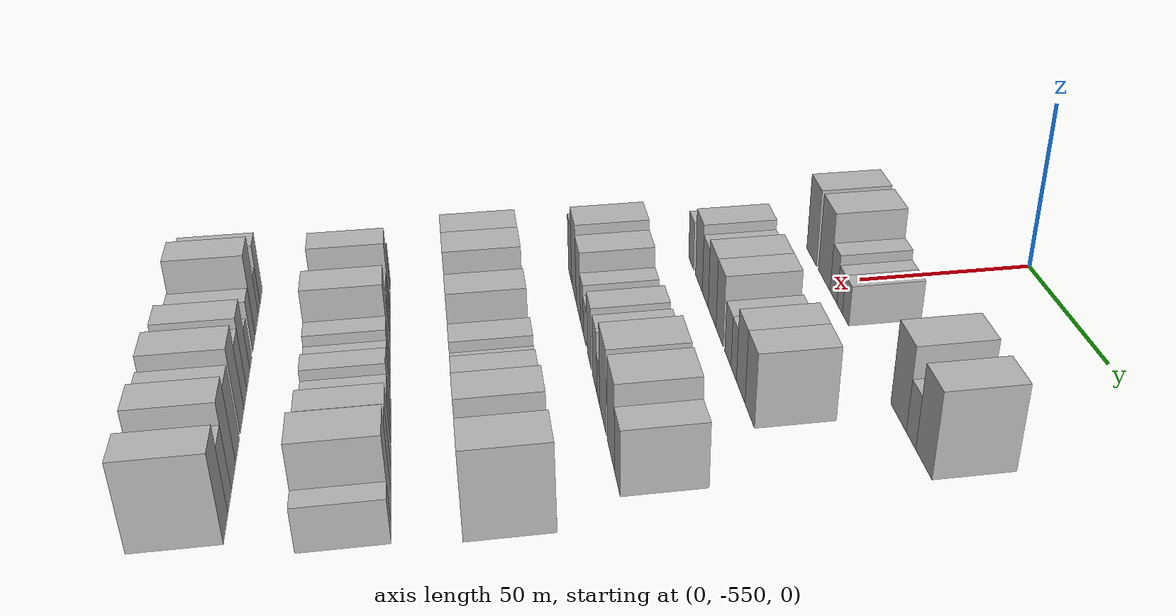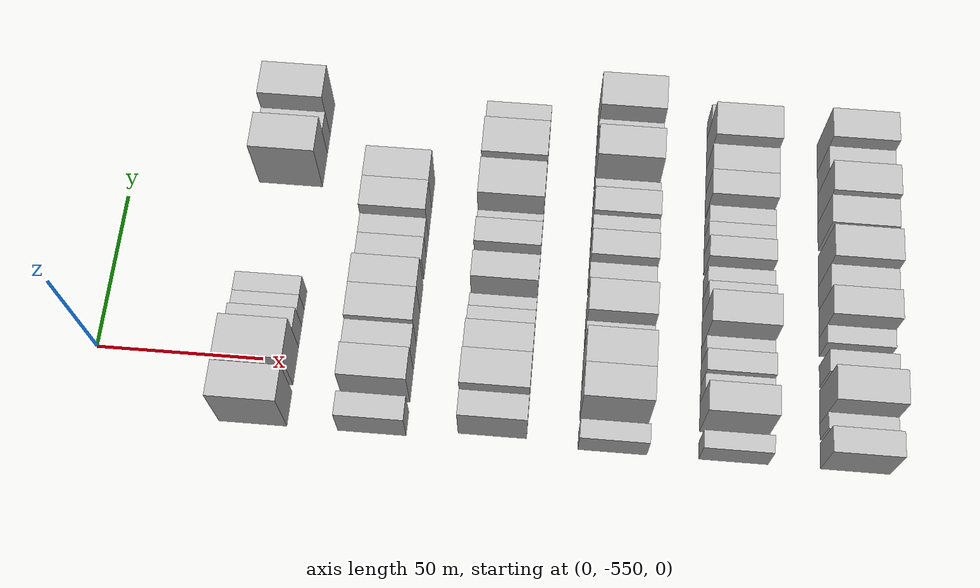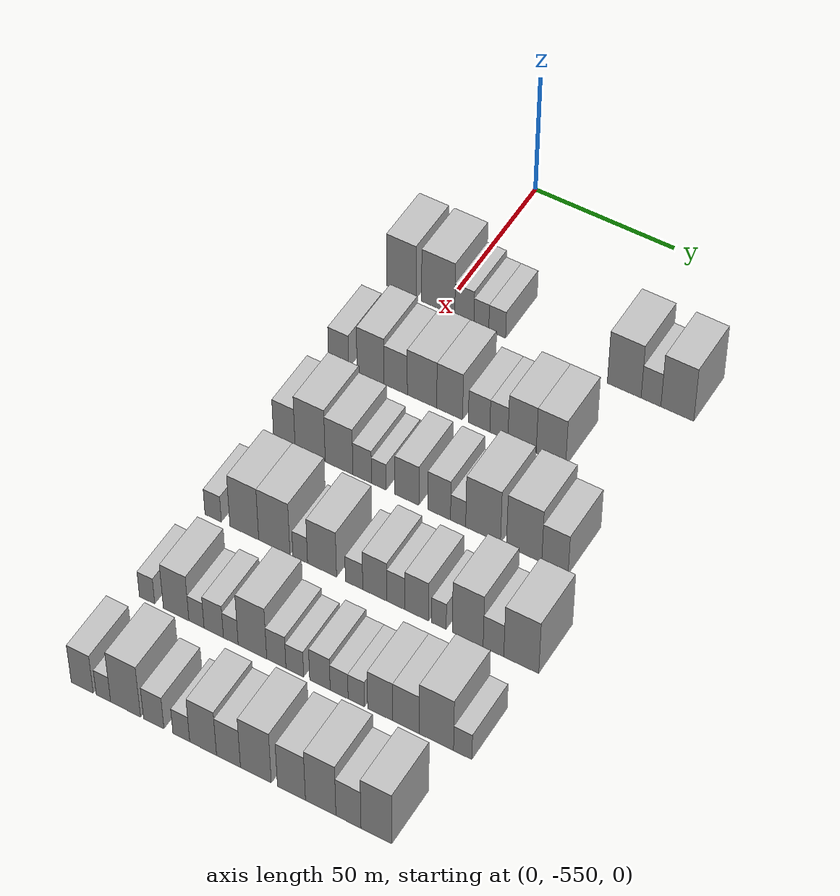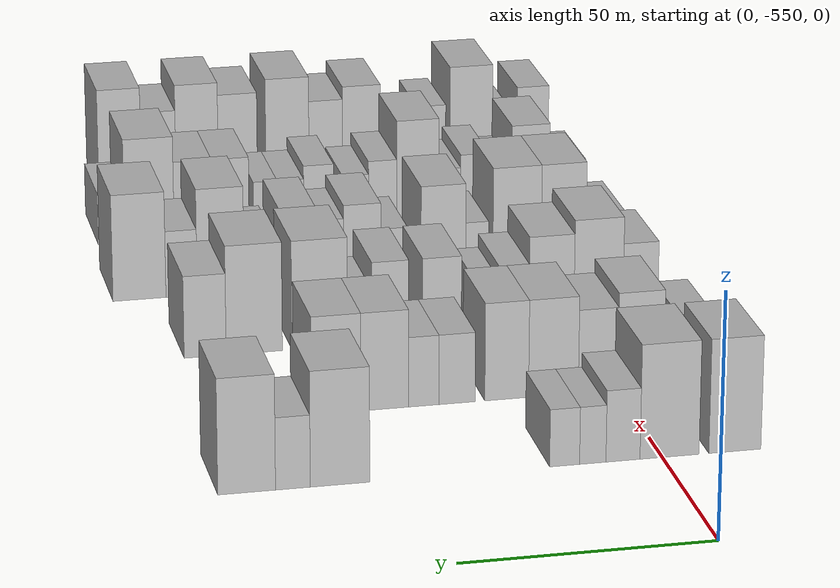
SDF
<sdf version="1.6">
 <world name="default">
  <model name="building_1">
   <static>1</static>
   <pose>50.0000 -564.7196 0 0.000000 0.000000 0.000000</pose>
   <link name="link">
    <pose>0 0 12.00 0 0 0</pose>
    <collision name="collision"><geometry><box><size>20.0000 10.5607 24.0000</size></box></geometry></collision>
    <visual name="visual">
     <cast_shadows>0</cast_shadows>
     <geometry><box><size>20.0000 10.5607 24.0000</size></box></geometry>
     <material>
      <script>
       <uri>model://HANNAS_wall/materials/scripts</uri>
       <uri>model://HANNAS_wall/materials/textures</uri>
       <name>vrc/HANNAS_wall</name>
      </script>
     </material>
    </visual>
   </link>
  </model>
  <model name="building_2">
   <static>1</static>
   <pose>50.0000 -551.4736 0 0.000000 0.000000 0.000000</pose>
   <link name="link">
    <pose>0 0 12.00 0 0 0</pose>
    <collision name="collision"><geometry><box><size>20.0000 11.9315 24.0000</size></box></geometry></collision>
    <visual name="visual">
     <cast_shadows>0</cast_shadows>
     <geometry><box><size>20.0000 11.9315 24.0000</size></box></geometry>
     <material>
      <script>
       <uri>model://HANNAS_wall/materials/scripts</uri>
       <uri>model://HANNAS_wall/materials/textures</uri>
       <name>vrc/HANNAS_wall</name>
      </script>
     </material>
    </visual>
   </link>
  </model>
  <model name="building_3">
   <static>1</static>
   <pose>50.0000 -542.0837 0 0.000000 0.000000 0.000000</pose>
   <link name="link">
    <pose>0 0 7.50 0 0 0</pose>
    <collision name="collision"><geometry><box><size>20.0000 6.8483 15.0000</size></box></geometry></collision>
    <visual name="visual">
     <cast_shadows>0</cast_shadows>
     <geometry><box><size>20.0000 6.8483 15.0000</size></box></geometry>
     <material>
      <script>
       <uri>model://HANNAS_wall/materials/scripts</uri>
       <uri>model://HANNAS_wall/materials/textures</uri>
       <name>vrc/HANNAS_wall</name>
      </script>
     </material>
    </visual>
   </link>
  </model>
  <model name="building_4">
   <static>1</static>
   <pose>50.0000 -536.0153 0 0.000000 0.000000 0.000000</pose>
   <link name="link">
    <pose>0 0 6.00 0 0 0</pose>
    <collision name="collision"><geometry><box><size>20.0000 5.2885 12.0000</size></box></geometry></collision>
    <visual name="visual">
     <cast_shadows>0</cast_shadows>
     <geometry><box><size>20.0000 5.2885 12.0000</size></box></geometry>
     <material>
      <script>
       <uri>model://HANNAS_wall/materials/scripts</uri>
       <uri>model://HANNAS_wall/materials/textures</uri>
       <name>vrc/HANNAS_wall</name>
      </script>
     </material>
    </visual>
   </link>
  </model>
  <model name="building_5">
   <static>1</static>
   <pose>50.0000 -530.3753 0 0.000000 0.000000 0.000000</pose>
   <link name="link">
    <pose>0 0 6.00 0 0 0</pose>
    <collision name="collision"><geometry><box><size>20.0000 5.9915 12.0000</size></box></geometry></collision>
    <visual name="visual">
     <cast_shadows>0</cast_shadows>
     <geometry><box><size>20.0000 5.9915 12.0000</size></box></geometry>
     <material>
      <script>
       <uri>model://HANNAS_wall/materials/scripts</uri>
       <uri>model://HANNAS_wall/materials/textures</uri>
       <name>vrc/HANNAS_wall</name>
      </script>
     </material>
    </visual>
   </link>
  </model>
  <model name="building_6">
   <static>1</static>
   <pose>50.0000 -485.9031 0 0.000000 0.000000 0.000000</pose>
   <link name="link">
    <pose>0 0 12.00 0 0 0</pose>
    <collision name="collision"><geometry><box><size>20.0000 11.6509 24.0000</size></box></geometry></collision>
    <visual name="visual">
     <cast_shadows>0</cast_shadows>
     <geometry><box><size>20.0000 11.6509 24.0000</size></box></geometry>
     <material>
      <script>
       <uri>model://HANNAS_wall/materials/scripts</uri>
       <uri>model://HANNAS_wall/materials/textures</uri>
       <name>vrc/HANNAS_wall</name>
      </script>
     </material>
    </visual>
   </link>
  </model>
  <model name="building_7">
   <static>1</static>
   <pose>50.0000 -476.6846 0 0.000000 0.000000 0.000000</pose>
   <link name="link">
    <pose>0 0 7.50 0 0 0</pose>
    <collision name="collision"><geometry><box><size>20.0000 6.7861 15.0000</size></box></geometry></collision>
    <visual name="visual">
     <cast_shadows>0</cast_shadows>
     <geometry><box><size>20.0000 6.7861 15.0000</size></box></geometry>
     <material>
      <script>
       <uri>model://HANNAS_wall/materials/scripts</uri>
       <uri>model://HANNAS_wall/materials/textures</uri>
       <name>vrc/HANNAS_wall</name>
      </script>
     </material>
    </visual>
   </link>
  </model>
  <model name="building_8">
   <static>1</static>
   <pose>50.0000 -467.6804 0 0.000000 0.000000 0.000000</pose>
   <link name="link">
    <pose>0 0 12.00 0 0 0</pose>
    <collision name="collision"><geometry><box><size>20.0000 11.2222 24.0000</size></box></geometry></collision>
    <visual name="visual">
     <cast_shadows>0</cast_shadows>
     <geometry><box><size>20.0000 11.2222 24.0000</size></box></geometry>
     <material>
      <script>
       <uri>model://HANNAS_wall/materials/scripts</uri>
       <uri>model://HANNAS_wall/materials/textures</uri>
       <name>vrc/HANNAS_wall</name>
      </script>
     </material>
    </visual>
   </link>
  </model>
  <model name="building_119">
   <static>1</static>
   <pose>85.0000 -566.3953 0 0.000000 0.000000 0.000000</pose>
   <link name="link">
    <pose>0 0 7.50 0 0 0</pose>
    <collision name="collision"><geometry><box><size>20.0000 7.2094 15.0000</size></box></geometry></collision>
    <visual name="visual">
     <cast_shadows>0</cast_shadows>
     <geometry><box><size>20.0000 7.2094 15.0000</size></box></geometry>
     <material>
      <script>
       <uri>model://HANNAS_wall/materials/scripts</uri>
       <uri>model://HANNAS_wall/materials/textures</uri>
       <name>vrc/HANNAS_wall</name>
      </script>
     </material>
    </visual>
   </link>
  </model>
  <model name="building_120">
   <static>1</static>
   <pose>85.0000 -554.9812 0 0.000000 0.000000 0.000000</pose>
   <link name="link">
    <pose>0 0 10.50 0 0 0</pose>
    <collision name="collision"><geometry><box><size>20.0000 9.6188 21.0000</size></box></geometry></collision>
    <visual name="visual">
     <cast_shadows>0</cast_shadows>
     <geometry><box><size>20.0000 9.6188 21.0000</size></box></geometry>
     <material>
      <script>
       <uri>model://HANNAS_wall/materials/scripts</uri>
       <uri>model://HANNAS_wall/materials/textures</uri>
       <name>vrc/HANNAS_wall</name>
      </script>
     </material>
    </visual>
   </link>
  </model>
  <model name="building_121">
   <static>1</static>
   <pose>85.0000 -546.0590 0 0.000000 0.000000 0.000000</pose>
   <link name="link">
    <pose>0 0 9.00 0 0 0</pose>
    <collision name="collision"><geometry><box><size>20.0000 8.2254 18.0000</size></box></geometry></collision>
    <visual name="visual">
     <cast_shadows>0</cast_shadows>
     <geometry><box><size>20.0000 8.2254 18.0000</size></box></geometry>
     <material>
      <script>
       <uri>model://HANNAS_wall/materials/scripts</uri>
       <uri>model://HANNAS_wall/materials/textures</uri>
       <name>vrc/HANNAS_wall</name>
      </script>
     </material>
    </visual>
   </link>
  </model>
  <model name="building_122">
   <static>1</static>
   <pose>85.0000 -536.7730 0 0.000000 0.000000 0.000000</pose>
   <link name="link">
    <pose>0 0 10.50 0 0 0</pose>
    <collision name="collision"><geometry><box><size>20.0000 10.3467 21.0000</size></box></geometry></collision>
    <visual name="visual">
     <cast_shadows>0</cast_shadows>
     <geometry><box><size>20.0000 10.3467 21.0000</size></box></geometry>
     <material>
      <script>
       <uri>model://HANNAS_wall/materials/scripts</uri>
       <uri>model://HANNAS_wall/materials/textures</uri>
       <name>vrc/HANNAS_wall</name>
      </script>
     </material>
    </visual>
   </link>
  </model>
  <model name="building_123">
   <static>1</static>
   <pose>85.0000 -527.0674 0 0.000000 0.000000 0.000000</pose>
   <link name="link">
    <pose>0 0 10.50 0 0 0</pose>
    <collision name="collision"><geometry><box><size>20.0000 9.0643 21.0000</size></box></geometry></collision>
    <visual name="visual">
     <cast_shadows>0</cast_shadows>
     <geometry><box><size>20.0000 9.0643 21.0000</size></box></geometry>
     <material>
      <script>
       <uri>model://HANNAS_wall/materials/scripts</uri>
       <uri>model://HANNAS_wall/materials/textures</uri>
       <name>vrc/HANNAS_wall</name>
      </script>
     </material>
    </visual>
   </link>
  </model>
  <model name="building_124">
   <static>1</static>
   <pose>85.0000 -516.8049 0 0.000000 0.000000 0.000000</pose>
   <link name="link">
    <pose>0 0 7.50 0 0 0</pose>
    <collision name="collision"><geometry><box><size>20.0000 7.4608 15.0000</size></box></geometry></collision>
    <visual name="visual">
     <cast_shadows>0</cast_shadows>
     <geometry><box><size>20.0000 7.4608 15.0000</size></box></geometry>
     <material>
      <script>
       <uri>model://HANNAS_wall/materials/scripts</uri>
       <uri>model://HANNAS_wall/materials/textures</uri>
       <name>vrc/HANNAS_wall</name>
      </script>
     </material>
    </visual>
   </link>
  </model>
  <model name="building_125">
   <static>1</static>
   <pose>85.0000 -509.9454 0 0.000000 0.000000 0.000000</pose>
   <link name="link">
    <pose>0 0 7.50 0 0 0</pose>
    <collision name="collision"><geometry><box><size>20.0000 6.2583 15.0000</size></box></geometry></collision>
    <visual name="visual">
     <cast_shadows>0</cast_shadows>
     <geometry><box><size>20.0000 6.2583 15.0000</size></box></geometry>
     <material>
      <script>
       <uri>model://HANNAS_wall/materials/scripts</uri>
       <uri>model://HANNAS_wall/materials/textures</uri>
       <name>vrc/HANNAS_wall</name>
      </script>
     </material>
    </visual>
   </link>
  </model>
  <model name="building_126">
   <static>1</static>
   <pose>85.0000 -501.9512 0 0.000000 0.000000 0.000000</pose>
   <link name="link">
    <pose>0 0 10.50 0 0 0</pose>
    <collision name="collision"><geometry><box><size>20.0000 9.7301 21.0000</size></box></geometry></collision>
    <visual name="visual">
     <cast_shadows>0</cast_shadows>
     <geometry><box><size>20.0000 9.7301 21.0000</size></box></geometry>
     <material>
      <script>
       <uri>model://HANNAS_wall/materials/scripts</uri>
       <uri>model://HANNAS_wall/materials/textures</uri>
       <name>vrc/HANNAS_wall</name>
      </script>
     </material>
    </visual>
   </link>
  </model>
  <model name="building_127">
   <static>1</static>
   <pose>85.0000 -492.0390 0 0.000000 0.000000 0.000000</pose>
   <link name="link">
    <pose>0 0 10.50 0 0 0</pose>
    <collision name="collision"><geometry><box><size>20.0000 10.0943 21.0000</size></box></geometry></collision>
    <visual name="visual">
     <cast_shadows>0</cast_shadows>
     <geometry><box><size>20.0000 10.0943 21.0000</size></box></geometry>
     <material>
      <script>
       <uri>model://HANNAS_wall/materials/scripts</uri>
       <uri>model://HANNAS_wall/materials/textures</uri>
       <name>vrc/HANNAS_wall</name>
      </script>
     </material>
    </visual>
   </link>
  </model>
  <model name="building_244">
   <static>1</static>
   <pose>120.0000 -564.2014 0 0.000000 0.000000 0.000000</pose>
   <link name="link">
    <pose>0 0 9.00 0 0 0</pose>
    <collision name="collision"><geometry><box><size>20.0000 7.5972 18.0000</size></box></geometry></collision>
    <visual name="visual">
     <cast_shadows>0</cast_shadows>
     <geometry><box><size>20.0000 7.5972 18.0000</size></box></geometry>
     <material>
      <script>
       <uri>model://HANNAS_wall/materials/scripts</uri>
       <uri>model://HANNAS_wall/materials/textures</uri>
       <name>vrc/HANNAS_wall</name>
      </script>
     </material>
    </visual>
   </link>
  </model>
  <model name="building_245">
   <static>1</static>
   <pose>120.0000 -555.0957 0 0.000000 0.000000 0.000000</pose>
   <link name="link">
    <pose>0 0 12.00 0 0 0</pose>
    <collision name="collision"><geometry><box><size>20.0000 10.6141 24.0000</size></box></geometry></collision>
    <visual name="visual">
     <cast_shadows>0</cast_shadows>
     <geometry><box><size>20.0000 10.6141 24.0000</size></box></geometry>
     <material>
      <script>
       <uri>model://HANNAS_wall/materials/scripts</uri>
       <uri>model://HANNAS_wall/materials/textures</uri>
       <name>vrc/HANNAS_wall</name>
      </script>
     </material>
    </visual>
   </link>
  </model>
  <model name="building_246">
   <static>1</static>
   <pose>120.0000 -544.9518 0 0.000000 0.000000 0.000000</pose>
   <link name="link">
    <pose>0 0 10.50 0 0 0</pose>
    <collision name="collision"><geometry><box><size>20.0000 9.6738 21.0000</size></box></geometry></collision>
    <visual name="visual">
     <cast_shadows>0</cast_shadows>
     <geometry><box><size>20.0000 9.6738 21.0000</size></box></geometry>
     <material>
      <script>
       <uri>model://HANNAS_wall/materials/scripts</uri>
       <uri>model://HANNAS_wall/materials/textures</uri>
       <name>vrc/HANNAS_wall</name>
      </script>
     </material>
    </visual>
   </link>
  </model>
  <model name="building_247">
   <static>1</static>
   <pose>120.0000 -536.8824 0 0.000000 0.000000 0.000000</pose>
   <link name="link">
    <pose>0 0 7.50 0 0 0</pose>
    <collision name="collision"><geometry><box><size>20.0000 6.4649 15.0000</size></box></geometry></collision>
    <visual name="visual">
     <cast_shadows>0</cast_shadows>
     <geometry><box><size>20.0000 6.4649 15.0000</size></box></geometry>
     <material>
      <script>
       <uri>model://HANNAS_wall/materials/scripts</uri>
       <uri>model://HANNAS_wall/materials/textures</uri>
       <name>vrc/HANNAS_wall</name>
      </script>
     </material>
    </visual>
   </link>
  </model>
  <model name="building_248">
   <static>1</static>
   <pose>120.0000 -531.1086 0 0.000000 0.000000 0.000000</pose>
   <link name="link">
    <pose>0 0 6.00 0 0 0</pose>
    <collision name="collision"><geometry><box><size>20.0000 5.0826 12.0000</size></box></geometry></collision>
    <visual name="visual">
     <cast_shadows>0</cast_shadows>
     <geometry><box><size>20.0000 5.0826 12.0000</size></box></geometry>
     <material>
      <script>
       <uri>model://HANNAS_wall/materials/scripts</uri>
       <uri>model://HANNAS_wall/materials/textures</uri>
       <name>vrc/HANNAS_wall</name>
      </script>
     </material>
    </visual>
   </link>
  </model>
  <model name="building_249">
   <static>1</static>
   <pose>120.0000 -521.4335 0 0.000000 0.000000 0.000000</pose>
   <link name="link">
    <pose>0 0 9.00 0 0 0</pose>
    <collision name="collision"><geometry><box><size>20.0000 8.2676 18.0000</size></box></geometry></collision>
    <visual name="visual">
     <cast_shadows>0</cast_shadows>
     <geometry><box><size>20.0000 8.2676 18.0000</size></box></geometry>
     <material>
      <script>
       <uri>model://HANNAS_wall/materials/scripts</uri>
       <uri>model://HANNAS_wall/materials/textures</uri>
       <name>vrc/HANNAS_wall</name>
      </script>
     </material>
    </visual>
   </link>
  </model>
  <model name="building_250">
   <static>1</static>
   <pose>120.0000 -510.3889 0 0.000000 0.000000 0.000000</pose>
   <link name="link">
    <pose>0 0 9.00 0 0 0</pose>
    <collision name="collision"><geometry><box><size>20.0000 7.8214 18.0000</size></box></geometry></collision>
    <visual name="visual">
     <cast_shadows>0</cast_shadows>
     <geometry><box><size>20.0000 7.8214 18.0000</size></box></geometry>
     <material>
      <script>
       <uri>model://HANNAS_wall/materials/scripts</uri>
       <uri>model://HANNAS_wall/materials/textures</uri>
       <name>vrc/HANNAS_wall</name>
      </script>
     </material>
    </visual>
   </link>
  </model>
  <model name="building_251">
   <static>1</static>
   <pose>120.0000 -503.9011 0 0.000000 0.000000 0.000000</pose>
   <link name="link">
    <pose>0 0 6.00 0 0 0</pose>
    <collision name="collision"><geometry><box><size>20.0000 5.1543 12.0000</size></box></geometry></collision>
    <visual name="visual">
     <cast_shadows>0</cast_shadows>
     <geometry><box><size>20.0000 5.1543 12.0000</size></box></geometry>
     <material>
      <script>
       <uri>model://HANNAS_wall/materials/scripts</uri>
       <uri>model://HANNAS_wall/materials/textures</uri>
       <name>vrc/HANNAS_wall</name>
      </script>
     </material>
    </visual>
   </link>
  </model>
  <model name="building_252">
   <static>1</static>
   <pose>120.0000 -495.4341 0 0.000000 0.000000 0.000000</pose>
   <link name="link">
    <pose>0 0 12.00 0 0 0</pose>
    <collision name="collision"><geometry><box><size>20.0000 11.7798 24.0000</size></box></geometry></collision>
    <visual name="visual">
     <cast_shadows>0</cast_shadows>
     <geometry><box><size>20.0000 11.7798 24.0000</size></box></geometry>
     <material>
      <script>
       <uri>model://HANNAS_wall/materials/scripts</uri>
       <uri>model://HANNAS_wall/materials/textures</uri>
       <name>vrc/HANNAS_wall</name>
      </script>
     </material>
    </visual>
   </link>
  </model>
  <model name="building_253">
   <static>1</static>
   <pose>120.0000 -481.6303 0 0.000000 0.000000 0.000000</pose>
   <link name="link">
    <pose>0 0 12.00 0 0 0</pose>
    <collision name="collision"><geometry><box><size>20.0000 11.8277 24.0000</size></box></geometry></collision>
    <visual name="visual">
     <cast_shadows>0</cast_shadows>
     <geometry><box><size>20.0000 11.8277 24.0000</size></box></geometry>
     <material>
      <script>
       <uri>model://HANNAS_wall/materials/scripts</uri>
       <uri>model://HANNAS_wall/materials/textures</uri>
       <name>vrc/HANNAS_wall</name>
      </script>
     </material>
    </visual>
   </link>
  </model>
  <model name="building_254">
   <static>1</static>
   <pose>120.0000 -471.3170 0 0.000000 0.000000 0.000000</pose>
   <link name="link">
    <pose>0 0 9.00 0 0 0</pose>
    <collision name="collision"><geometry><box><size>20.0000 8.7990 18.0000</size></box></geometry></collision>
    <visual name="visual">
     <cast_shadows>0</cast_shadows>
     <geometry><box><size>20.0000 8.7990 18.0000</size></box></geometry>
     <material>
      <script>
       <uri>model://HANNAS_wall/materials/scripts</uri>
       <uri>model://HANNAS_wall/materials/textures</uri>
       <name>vrc/HANNAS_wall</name>
      </script>
     </material>
    </visual>
   </link>
  </model>
  <model name="building_364">
   <static>1</static>
   <pose>155.0000 -567.1345 0 0.000000 0.000000 0.000000</pose>
   <link name="link">
    <pose>0 0 6.00 0 0 0</pose>
    <collision name="collision"><geometry><box><size>20.0000 5.7309 12.0000</size></box></geometry></collision>
    <visual name="visual">
     <cast_shadows>0</cast_shadows>
     <geometry><box><size>20.0000 5.7309 12.0000</size></box></geometry>
     <material>
      <script>
       <uri>model://HANNAS_wall/materials/scripts</uri>
       <uri>model://HANNAS_wall/materials/textures</uri>
       <name>vrc/HANNAS_wall</name>
      </script>
     </material>
    </visual>
   </link>
  </model>
  <model name="building_365">
   <static>1</static>
   <pose>155.0000 -556.2629 0 0.000000 0.000000 0.000000</pose>
   <link name="link">
    <pose>0 0 12.00 0 0 0</pose>
    <collision name="collision"><geometry><box><size>20.0000 10.0124 24.0000</size></box></geometry></collision>
    <visual name="visual">
     <cast_shadows>0</cast_shadows>
     <geometry><box><size>20.0000 10.0124 24.0000</size></box></geometry>
     <material>
      <script>
       <uri>model://HANNAS_wall/materials/scripts</uri>
       <uri>model://HANNAS_wall/materials/textures</uri>
       <name>vrc/HANNAS_wall</name>
      </script>
     </material>
    </visual>
   </link>
  </model>
  <model name="building_366">
   <static>1</static>
   <pose>155.0000 -545.8577 0 0.000000 0.000000 0.000000</pose>
   <link name="link">
    <pose>0 0 12.00 0 0 0</pose>
    <collision name="collision"><geometry><box><size>20.0000 10.7978 24.0000</size></box></geometry></collision>
    <visual name="visual">
     <cast_shadows>0</cast_shadows>
     <geometry><box><size>20.0000 10.7978 24.0000</size></box></geometry>
     <material>
      <script>
       <uri>model://HANNAS_wall/materials/scripts</uri>
       <uri>model://HANNAS_wall/materials/textures</uri>
       <name>vrc/HANNAS_wall</name>
      </script>
     </material>
    </visual>
   </link>
  </model>
  <model name="building_367">
   <static>1</static>
   <pose>155.0000 -536.9388 0 0.000000 0.000000 0.000000</pose>
   <link name="link">
    <pose>0 0 6.00 0 0 0</pose>
    <collision name="collision"><geometry><box><size>20.0000 5.0400 12.0000</size></box></geometry></collision>
    <visual name="visual">
     <cast_shadows>0</cast_shadows>
     <geometry><box><size>20.0000 5.0400 12.0000</size></box></geometry>
     <material>
      <script>
       <uri>model://HANNAS_wall/materials/scripts</uri>
       <uri>model://HANNAS_wall/materials/textures</uri>
       <name>vrc/HANNAS_wall</name>
      </script>
     </material>
    </visual>
   </link>
  </model>
  <model name="building_368">
   <static>1</static>
   <pose>155.0000 -529.4599 0 0.000000 0.000000 0.000000</pose>
   <link name="link">
    <pose>0 0 10.50 0 0 0</pose>
    <collision name="collision"><geometry><box><size>20.0000 9.9177 21.0000</size></box></geometry></collision>
    <visual name="visual">
     <cast_shadows>0</cast_shadows>
     <geometry><box><size>20.0000 9.9177 21.0000</size></box></geometry>
     <material>
      <script>
       <uri>model://HANNAS_wall/materials/scripts</uri>
       <uri>model://HANNAS_wall/materials/textures</uri>
       <name>vrc/HANNAS_wall</name>
      </script>
     </material>
    </visual>
   </link>
  </model>
  <model name="building_369">
   <static>1</static>
   <pose>155.0000 -518.5584 0 0.000000 0.000000 0.000000</pose>
   <link name="link">
    <pose>0 0 6.00 0 0 0</pose>
    <collision name="collision"><geometry><box><size>20.0000 5.8853 12.0000</size></box></geometry></collision>
    <visual name="visual">
     <cast_shadows>0</cast_shadows>
     <geometry><box><size>20.0000 5.8853 12.0000</size></box></geometry>
     <material>
      <script>
       <uri>model://HANNAS_wall/materials/scripts</uri>
       <uri>model://HANNAS_wall/materials/textures</uri>
       <name>vrc/HANNAS_wall</name>
      </script>
     </material>
    </visual>
   </link>
  </model>
  <model name="building_370">
   <static>1</static>
   <pose>155.0000 -511.5236 0 0.000000 0.000000 0.000000</pose>
   <link name="link">
    <pose>0 0 9.00 0 0 0</pose>
    <collision name="collision"><geometry><box><size>20.0000 8.1845 18.0000</size></box></geometry></collision>
    <visual name="visual">
     <cast_shadows>0</cast_shadows>
     <geometry><box><size>20.0000 8.1845 18.0000</size></box></geometry>
     <material>
      <script>
       <uri>model://HANNAS_wall/materials/scripts</uri>
       <uri>model://HANNAS_wall/materials/textures</uri>
       <name>vrc/HANNAS_wall</name>
      </script>
     </material>
    </visual>
   </link>
  </model>
  <model name="building_371">
   <static>1</static>
   <pose>155.0000 -504.4167 0 0.000000 0.000000 0.000000</pose>
   <link name="link">
    <pose>0 0 7.50 0 0 0</pose>
    <collision name="collision"><geometry><box><size>20.0000 6.0292 15.0000</size></box></geometry></collision>
    <visual name="visual">
     <cast_shadows>0</cast_shadows>
     <geometry><box><size>20.0000 6.0292 15.0000</size></box></geometry>
     <material>
      <script>
       <uri>model://HANNAS_wall/materials/scripts</uri>
       <uri>model://HANNAS_wall/materials/textures</uri>
       <name>vrc/HANNAS_wall</name>
      </script>
     </material>
    </visual>
   </link>
  </model>
  <model name="building_372">
   <static>1</static>
   <pose>155.0000 -497.4340 0 0.000000 0.000000 0.000000</pose>
   <link name="link">
    <pose>0 0 9.00 0 0 0</pose>
    <collision name="collision"><geometry><box><size>20.0000 7.9362 18.0000</size></box></geometry></collision>
    <visual name="visual">
     <cast_shadows>0</cast_shadows>
     <geometry><box><size>20.0000 7.9362 18.0000</size></box></geometry>
     <material>
      <script>
       <uri>model://HANNAS_wall/materials/scripts</uri>
       <uri>model://HANNAS_wall/materials/textures</uri>
       <name>vrc/HANNAS_wall</name>
      </script>
     </material>
    </visual>
   </link>
  </model>
  <model name="building_373">
   <static>1</static>
   <pose>155.0000 -490.0516 0 0.000000 0.000000 0.000000</pose>
   <link name="link">
    <pose>0 0 6.00 0 0 0</pose>
    <collision name="collision"><geometry><box><size>20.0000 4.8285 12.0000</size></box></geometry></collision>
    <visual name="visual">
     <cast_shadows>0</cast_shadows>
     <geometry><box><size>20.0000 4.8285 12.0000</size></box></geometry>
     <material>
      <script>
       <uri>model://HANNAS_wall/materials/scripts</uri>
       <uri>model://HANNAS_wall/materials/textures</uri>
       <name>vrc/HANNAS_wall</name>
      </script>
     </material>
    </visual>
   </link>
  </model>
  <model name="building_374">
   <static>1</static>
   <pose>155.0000 -480.5333 0 0.000000 0.000000 0.000000</pose>
   <link name="link">
    <pose>0 0 12.00 0 0 0</pose>
    <collision name="collision"><geometry><box><size>20.0000 10.2081 24.0000</size></box></geometry></collision>
    <visual name="visual">
     <cast_shadows>0</cast_shadows>
     <geometry><box><size>20.0000 10.2081 24.0000</size></box></geometry>
     <material>
      <script>
       <uri>model://HANNAS_wall/materials/scripts</uri>
       <uri>model://HANNAS_wall/materials/textures</uri>
       <name>vrc/HANNAS_wall</name>
      </script>
     </material>
    </visual>
   </link>
  </model>
  <model name="building_375">
   <static>1</static>
   <pose>155.0000 -472.0370 0 0.000000 0.000000 0.000000</pose>
   <link name="link">
    <pose>0 0 7.50 0 0 0</pose>
    <collision name="collision"><geometry><box><size>20.0000 6.7846 15.0000</size></box></geometry></collision>
    <visual name="visual">
     <cast_shadows>0</cast_shadows>
     <geometry><box><size>20.0000 6.7846 15.0000</size></box></geometry>
     <material>
      <script>
       <uri>model://HANNAS_wall/materials/scripts</uri>
       <uri>model://HANNAS_wall/materials/textures</uri>
       <name>vrc/HANNAS_wall</name>
      </script>
     </material>
    </visual>
   </link>
  </model>
  <model name="building_376">
   <static>1</static>
   <pose>155.0000 -462.9257 0 0.000000 0.000000 0.000000</pose>
   <link name="link">
    <pose>0 0 12.00 0 0 0</pose>
    <collision name="collision"><geometry><box><size>20.0000 11.4380 24.0000</size></box></geometry></collision>
    <visual name="visual">
     <cast_shadows>0</cast_shadows>
     <geometry><box><size>20.0000 11.4380 24.0000</size></box></geometry>
     <material>
      <script>
       <uri>model://HANNAS_wall/materials/scripts</uri>
       <uri>model://HANNAS_wall/materials/textures</uri>
       <name>vrc/HANNAS_wall</name>
      </script>
     </material>
    </visual>
   </link>
  </model>
  <model name="building_486">
   <static>1</static>
   <pose>190.0000 -567.3631 0 0.000000 0.000000 0.000000</pose>
   <link name="link">
    <pose>0 0 6.00 0 0 0</pose>
    <collision name="collision"><geometry><box><size>20.0000 5.2738 12.0000</size></box></geometry></collision>
    <visual name="visual">
     <cast_shadows>0</cast_shadows>
     <geometry><box><size>20.0000 5.2738 12.0000</size></box></geometry>
     <material>
      <script>
       <uri>model://HANNAS_wall/materials/scripts</uri>
       <uri>model://HANNAS_wall/materials/textures</uri>
       <name>vrc/HANNAS_wall</name>
      </script>
     </material>
    </visual>
   </link>
  </model>
  <model name="building_487">
   <static>1</static>
   <pose>190.0000 -557.3371 0 0.000000 0.000000 0.000000</pose>
   <link name="link">
    <pose>0 0 10.50 0 0 0</pose>
    <collision name="collision"><geometry><box><size>20.0000 8.7782 21.0000</size></box></geometry></collision>
    <visual name="visual">
     <cast_shadows>0</cast_shadows>
     <geometry><box><size>20.0000 8.7782 21.0000</size></box></geometry>
     <material>
      <script>
       <uri>model://HANNAS_wall/materials/scripts</uri>
       <uri>model://HANNAS_wall/materials/textures</uri>
       <name>vrc/HANNAS_wall</name>
      </script>
     </material>
    </visual>
   </link>
  </model>
  <model name="building_488">
   <static>1</static>
   <pose>190.0000 -550.3564 0 0.000000 0.000000 0.000000</pose>
   <link name="link">
    <pose>0 0 6.00 0 0 0</pose>
    <collision name="collision"><geometry><box><size>20.0000 5.1834 12.0000</size></box></geometry></collision>
    <visual name="visual">
     <cast_shadows>0</cast_shadows>
     <geometry><box><size>20.0000 5.1834 12.0000</size></box></geometry>
     <material>
      <script>
       <uri>model://HANNAS_wall/materials/scripts</uri>
       <uri>model://HANNAS_wall/materials/textures</uri>
       <name>vrc/HANNAS_wall</name>
      </script>
     </material>
    </visual>
   </link>
  </model>
  <model name="building_489">
   <static>1</static>
   <pose>190.0000 -544.4713 0 0.000000 0.000000 0.000000</pose>
   <link name="link">
    <pose>0 0 7.50 0 0 0</pose>
    <collision name="collision"><geometry><box><size>20.0000 6.5867 15.0000</size></box></geometry></collision>
    <visual name="visual">
     <cast_shadows>0</cast_shadows>
     <geometry><box><size>20.0000 6.5867 15.0000</size></box></geometry>
     <material>
      <script>
       <uri>model://HANNAS_wall/materials/scripts</uri>
       <uri>model://HANNAS_wall/materials/textures</uri>
       <name>vrc/HANNAS_wall</name>
      </script>
     </material>
    </visual>
   </link>
  </model>
  <model name="building_490">
   <static>1</static>
   <pose>190.0000 -538.6658 0 0.000000 0.000000 0.000000</pose>
   <link name="link">
    <pose>0 0 6.00 0 0 0</pose>
    <collision name="collision"><geometry><box><size>20.0000 5.0244 12.0000</size></box></geometry></collision>
    <visual name="visual">
     <cast_shadows>0</cast_shadows>
     <geometry><box><size>20.0000 5.0244 12.0000</size></box></geometry>
     <material>
      <script>
       <uri>model://HANNAS_wall/materials/scripts</uri>
       <uri>model://HANNAS_wall/materials/textures</uri>
       <name>vrc/HANNAS_wall</name>
      </script>
     </material>
    </visual>
   </link>
  </model>
  <model name="building_491">
   <static>1</static>
   <pose>190.0000 -531.3339 0 0.000000 0.000000 0.000000</pose>
   <link name="link">
    <pose>0 0 12.00 0 0 0</pose>
    <collision name="collision"><geometry><box><size>20.0000 9.6394 24.0000</size></box></geometry></collision>
    <visual name="visual">
     <cast_shadows>0</cast_shadows>
     <geometry><box><size>20.0000 9.6394 24.0000</size></box></geometry>
     <material>
      <script>
       <uri>model://HANNAS_wall/materials/scripts</uri>
       <uri>model://HANNAS_wall/materials/textures</uri>
       <name>vrc/HANNAS_wall</name>
      </script>
     </material>
    </visual>
   </link>
  </model>
  <model name="building_492">
   <static>1</static>
   <pose>190.0000 -523.2801 0 0.000000 0.000000 0.000000</pose>
   <link name="link">
    <pose>0 0 7.50 0 0 0</pose>
    <collision name="collision"><geometry><box><size>20.0000 6.4683 15.0000</size></box></geometry></collision>
    <visual name="visual">
     <cast_shadows>0</cast_shadows>
     <geometry><box><size>20.0000 6.4683 15.0000</size></box></geometry>
     <material>
      <script>
       <uri>model://HANNAS_wall/materials/scripts</uri>
       <uri>model://HANNAS_wall/materials/textures</uri>
       <name>vrc/HANNAS_wall</name>
      </script>
     </material>
    </visual>
   </link>
  </model>
  <model name="building_493">
   <static>1</static>
   <pose>190.0000 -517.0808 0 0.000000 0.000000 0.000000</pose>
   <link name="link">
    <pose>0 0 6.00 0 0 0</pose>
    <collision name="collision"><geometry><box><size>20.0000 5.9303 12.0000</size></box></geometry></collision>
    <visual name="visual">
     <cast_shadows>0</cast_shadows>
     <geometry><box><size>20.0000 5.9303 12.0000</size></box></geometry>
     <material>
      <script>
       <uri>model://HANNAS_wall/materials/scripts</uri>
       <uri>model://HANNAS_wall/materials/textures</uri>
       <name>vrc/HANNAS_wall</name>
      </script>
     </material>
    </visual>
   </link>
  </model>
  <model name="building_494">
   <static>1</static>
   <pose>190.0000 -508.7069 0 0.000000 0.000000 0.000000</pose>
   <link name="link">
    <pose>0 0 7.50 0 0 0</pose>
    <collision name="collision"><geometry><box><size>20.0000 6.8176 15.0000</size></box></geometry></collision>
    <visual name="visual">
     <cast_shadows>0</cast_shadows>
     <geometry><box><size>20.0000 6.8176 15.0000</size></box></geometry>
     <material>
      <script>
       <uri>model://HANNAS_wall/materials/scripts</uri>
       <uri>model://HANNAS_wall/materials/textures</uri>
       <name>vrc/HANNAS_wall</name>
      </script>
     </material>
    </visual>
   </link>
  </model>
  <model name="building_495">
   <static>1</static>
   <pose>190.0000 -502.3276 0 0.000000 0.000000 0.000000</pose>
   <link name="link">
    <pose>0 0 6.00 0 0 0</pose>
    <collision name="collision"><geometry><box><size>20.0000 5.9409 12.0000</size></box></geometry></collision>
    <visual name="visual">
     <cast_shadows>0</cast_shadows>
     <geometry><box><size>20.0000 5.9409 12.0000</size></box></geometry>
     <material>
      <script>
       <uri>model://HANNAS_wall/materials/scripts</uri>
       <uri>model://HANNAS_wall/materials/textures</uri>
       <name>vrc/HANNAS_wall</name>
      </script>
     </material>
    </visual>
   </link>
  </model>
  <model name="building_496">
   <static>1</static>
   <pose>190.0000 -496.6466 0 0.000000 0.000000 0.000000</pose>
   <link name="link">
    <pose>0 0 6.00 0 0 0</pose>
    <collision name="collision"><geometry><box><size>20.0000 5.4210 12.0000</size></box></geometry></collision>
    <visual name="visual">
     <cast_shadows>0</cast_shadows>
     <geometry><box><size>20.0000 5.4210 12.0000</size></box></geometry>
     <material>
      <script>
       <uri>model://HANNAS_wall/materials/scripts</uri>
       <uri>model://HANNAS_wall/materials/textures</uri>
       <name>vrc/HANNAS_wall</name>
      </script>
     </material>
    </visual>
   </link>
  </model>
  <model name="building_497">
   <static>1</static>
   <pose>190.0000 -488.8235 0 0.000000 0.000000 0.000000</pose>
   <link name="link">
    <pose>0 0 9.00 0 0 0</pose>
    <collision name="collision"><geometry><box><size>20.0000 8.2253 18.0000</size></box></geometry></collision>
    <visual name="visual">
     <cast_shadows>0</cast_shadows>
     <geometry><box><size>20.0000 8.2253 18.0000</size></box></geometry>
     <material>
      <script>
       <uri>model://HANNAS_wall/materials/scripts</uri>
       <uri>model://HANNAS_wall/materials/textures</uri>
       <name>vrc/HANNAS_wall</name>
      </script>
     </material>
    </visual>
   </link>
  </model>
  <model name="building_498">
   <static>1</static>
   <pose>190.0000 -480.3732 0 0.000000 0.000000 0.000000</pose>
   <link name="link">
    <pose>0 0 9.00 0 0 0</pose>
    <collision name="collision"><geometry><box><size>20.0000 8.6754 18.0000</size></box></geometry></collision>
    <visual name="visual">
     <cast_shadows>0</cast_shadows>
     <geometry><box><size>20.0000 8.6754 18.0000</size></box></geometry>
     <material>
      <script>
       <uri>model://HANNAS_wall/materials/scripts</uri>
       <uri>model://HANNAS_wall/materials/textures</uri>
       <name>vrc/HANNAS_wall</name>
      </script>
     </material>
    </visual>
   </link>
  </model>
  <model name="building_499">
   <static>1</static>
   <pose>190.0000 -470.4887 0 0.000000 0.000000 0.000000</pose>
   <link name="link">
    <pose>0 0 12.00 0 0 0</pose>
    <collision name="collision"><geometry><box><size>20.0000 11.0935 24.0000</size></box></geometry></collision>
    <visual name="visual">
     <cast_shadows>0</cast_shadows>
     <geometry><box><size>20.0000 11.0935 24.0000</size></box></geometry>
     <material>
      <script>
       <uri>model://HANNAS_wall/materials/scripts</uri>
       <uri>model://HANNAS_wall/materials/textures</uri>
       <name>vrc/HANNAS_wall</name>
      </script>
     </material>
    </visual>
   </link>
  </model>
  <model name="building_500">
   <static>1</static>
   <pose>190.0000 -461.9829 0 0.000000 0.000000 0.000000</pose>
   <link name="link">
    <pose>0 0 6.00 0 0 0</pose>
    <collision name="collision"><geometry><box><size>20.0000 5.9182 12.0000</size></box></geometry></collision>
    <visual name="visual">
     <cast_shadows>0</cast_shadows>
     <geometry><box><size>20.0000 5.9182 12.0000</size></box></geometry>
     <material>
      <script>
       <uri>model://HANNAS_wall/materials/scripts</uri>
       <uri>model://HANNAS_wall/materials/textures</uri>
       <name>vrc/HANNAS_wall</name>
      </script>
     </material>
    </visual>
   </link>
  </model>
  <model name="building_615">
   <static>1</static>
   <pose>225.0000 -566.2390 0 0.000000 0.000000 0.000000</pose>
   <link name="link">
    <pose>0 0 9.00 0 0 0</pose>
    <collision name="collision"><geometry><box><size>20.0000 7.5220 18.0000</size></box></geometry></collision>
    <visual name="visual">
     <cast_shadows>0</cast_shadows>
     <geometry><box><size>20.0000 7.5220 18.0000</size></box></geometry>
     <material>
      <script>
       <uri>model://HANNAS_wall/materials/scripts</uri>
       <uri>model://HANNAS_wall/materials/textures</uri>
       <name>vrc/HANNAS_wall</name>
      </script>
     </material>
    </visual>
   </link>
  </model>
  <model name="building_616">
   <static>1</static>
   <pose>225.0000 -559.0276 0 0.000000 0.000000 0.000000</pose>
   <link name="link">
    <pose>0 0 6.00 0 0 0</pose>
    <collision name="collision"><geometry><box><size>20.0000 4.9008 12.0000</size></box></geometry></collision>
    <visual name="visual">
     <cast_shadows>0</cast_shadows>
     <geometry><box><size>20.0000 4.9008 12.0000</size></box></geometry>
     <material>
      <script>
       <uri>model://HANNAS_wall/materials/scripts</uri>
       <uri>model://HANNAS_wall/materials/textures</uri>
       <name>vrc/HANNAS_wall</name>
      </script>
     </material>
    </visual>
   </link>
  </model>
  <model name="building_617">
   <static>1</static>
   <pose>225.0000 -551.5154 0 0.000000 0.000000 0.000000</pose>
   <link name="link">
    <pose>0 0 12.00 0 0 0</pose>
    <collision name="collision"><geometry><box><size>20.0000 10.1237 24.0000</size></box></geometry></collision>
    <visual name="visual">
     <cast_shadows>0</cast_shadows>
     <geometry><box><size>20.0000 10.1237 24.0000</size></box></geometry>
     <material>
      <script>
       <uri>model://HANNAS_wall/materials/scripts</uri>
       <uri>model://HANNAS_wall/materials/textures</uri>
       <name>vrc/HANNAS_wall</name>
      </script>
     </material>
    </visual>
   </link>
  </model>
  <model name="building_618">
   <static>1</static>
   <pose>225.0000 -542.0239 0 0.000000 0.000000 0.000000</pose>
   <link name="link">
    <pose>0 0 7.50 0 0 0</pose>
    <collision name="collision"><geometry><box><size>20.0000 6.8592 15.0000</size></box></geometry></collision>
    <visual name="visual">
     <cast_shadows>0</cast_shadows>
     <geometry><box><size>20.0000 6.8592 15.0000</size></box></geometry>
     <material>
      <script>
       <uri>model://HANNAS_wall/materials/scripts</uri>
       <uri>model://HANNAS_wall/materials/textures</uri>
       <name>vrc/HANNAS_wall</name>
      </script>
     </material>
    </visual>
   </link>
  </model>
  <model name="building_619">
   <static>1</static>
   <pose>225.0000 -532.7840 0 0.000000 0.000000 0.000000</pose>
   <link name="link">
    <pose>0 0 6.00 0 0 0</pose>
    <collision name="collision"><geometry><box><size>20.0000 5.6206 12.0000</size></box></geometry></collision>
    <visual name="visual">
     <cast_shadows>0</cast_shadows>
     <geometry><box><size>20.0000 5.6206 12.0000</size></box></geometry>
     <material>
      <script>
       <uri>model://HANNAS_wall/materials/scripts</uri>
       <uri>model://HANNAS_wall/materials/textures</uri>
       <name>vrc/HANNAS_wall</name>
      </script>
     </material>
    </visual>
   </link>
  </model>
  <model name="building_620">
   <static>1</static>
   <pose>225.0000 -525.5233 0 0.000000 0.000000 0.000000</pose>
   <link name="link">
    <pose>0 0 10.50 0 0 0</pose>
    <collision name="collision"><geometry><box><size>20.0000 8.9007 21.0000</size></box></geometry></collision>
    <visual name="visual">
     <cast_shadows>0</cast_shadows>
     <geometry><box><size>20.0000 8.9007 21.0000</size></box></geometry>
     <material>
      <script>
       <uri>model://HANNAS_wall/materials/scripts</uri>
       <uri>model://HANNAS_wall/materials/textures</uri>
       <name>vrc/HANNAS_wall</name>
      </script>
     </material>
    </visual>
   </link>
  </model>
  <model name="building_621">
   <static>1</static>
   <pose>225.0000 -517.1164 0 0.000000 0.000000 0.000000</pose>
   <link name="link">
    <pose>0 0 9.00 0 0 0</pose>
    <collision name="collision"><geometry><box><size>20.0000 7.9133 18.0000</size></box></geometry></collision>
    <visual name="visual">
     <cast_shadows>0</cast_shadows>
     <geometry><box><size>20.0000 7.9133 18.0000</size></box></geometry>
     <material>
      <script>
       <uri>model://HANNAS_wall/materials/scripts</uri>
       <uri>model://HANNAS_wall/materials/textures</uri>
       <name>vrc/HANNAS_wall</name>
      </script>
     </material>
    </visual>
   </link>
  </model>
  <model name="building_622">
   <static>1</static>
   <pose>225.0000 -508.1045 0 0.000000 0.000000 0.000000</pose>
   <link name="link">
    <pose>0 0 12.00 0 0 0</pose>
    <collision name="collision"><geometry><box><size>20.0000 10.1104 24.0000</size></box></geometry></collision>
    <visual name="visual">
     <cast_shadows>0</cast_shadows>
     <geometry><box><size>20.0000 10.1104 24.0000</size></box></geometry>
     <material>
      <script>
       <uri>model://HANNAS_wall/materials/scripts</uri>
       <uri>model://HANNAS_wall/materials/textures</uri>
       <name>vrc/HANNAS_wall</name>
      </script>
     </material>
    </visual>
   </link>
  </model>
  <model name="building_623">
   <static>1</static>
   <pose>225.0000 -496.4879 0 0.000000 0.000000 0.000000</pose>
   <link name="link">
    <pose>0 0 10.50 0 0 0</pose>
    <collision name="collision"><geometry><box><size>20.0000 9.1229 21.0000</size></box></geometry></collision>
    <visual name="visual">
     <cast_shadows>0</cast_shadows>
     <geometry><box><size>20.0000 9.1229 21.0000</size></box></geometry>
     <material>
      <script>
       <uri>model://HANNAS_wall/materials/scripts</uri>
       <uri>model://HANNAS_wall/materials/textures</uri>
       <name>vrc/HANNAS_wall</name>
      </script>
     </material>
    </visual>
   </link>
  </model>
  <model name="building_624">
   <static>1</static>
   <pose>225.0000 -486.9995 0 0.000000 0.000000 0.000000</pose>
   <link name="link">
    <pose>0 0 12.00 0 0 0</pose>
    <collision name="collision"><geometry><box><size>20.0000 9.8539 24.0000</size></box></geometry></collision>
    <visual name="visual">
     <cast_shadows>0</cast_shadows>
     <geometry><box><size>20.0000 9.8539 24.0000</size></box></geometry>
     <material>
      <script>
       <uri>model://HANNAS_wall/materials/scripts</uri>
       <uri>model://HANNAS_wall/materials/textures</uri>
       <name>vrc/HANNAS_wall</name>
      </script>
     </material>
    </visual>
   </link>
  </model>
  <model name="building_625">
   <static>1</static>
   <pose>225.0000 -478.0428 0 0.000000 0.000000 0.000000</pose>
   <link name="link">
    <pose>0 0 9.00 0 0 0</pose>
    <collision name="collision"><geometry><box><size>20.0000 8.0595 18.0000</size></box></geometry></collision>
    <visual name="visual">
     <cast_shadows>0</cast_shadows>
     <geometry><box><size>20.0000 8.0595 18.0000</size></box></geometry>
     <material>
      <script>
       <uri>model://HANNAS_wall/materials/scripts</uri>
       <uri>model://HANNAS_wall/materials/textures</uri>
       <name>vrc/HANNAS_wall</name>
      </script>
     </material>
    </visual>
   </link>
  </model>
  <model name="building_626">
   <static>1</static>
   <pose>225.0000 -469.0925 0 0.000000 0.000000 0.000000</pose>
   <link name="link">
    <pose>0 0 12.00 0 0 0</pose>
    <collision name="collision"><geometry><box><size>20.0000 9.8412 24.0000</size></box></geometry></collision>
    <visual name="visual">
     <cast_shadows>0</cast_shadows>
     <geometry><box><size>20.0000 9.8412 24.0000</size></box></geometry>
     <material>
      <script>
       <uri>model://HANNAS_wall/materials/scripts</uri>
       <uri>model://HANNAS_wall/materials/textures</uri>
       <name>vrc/HANNAS_wall</name>
      </script>
     </material>
    </visual>
   </link>
  </model>
 </world>
</sdf>
